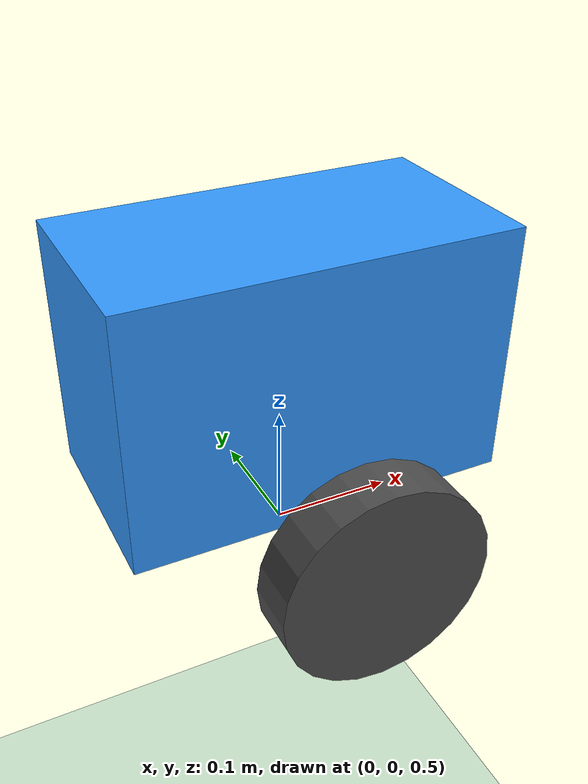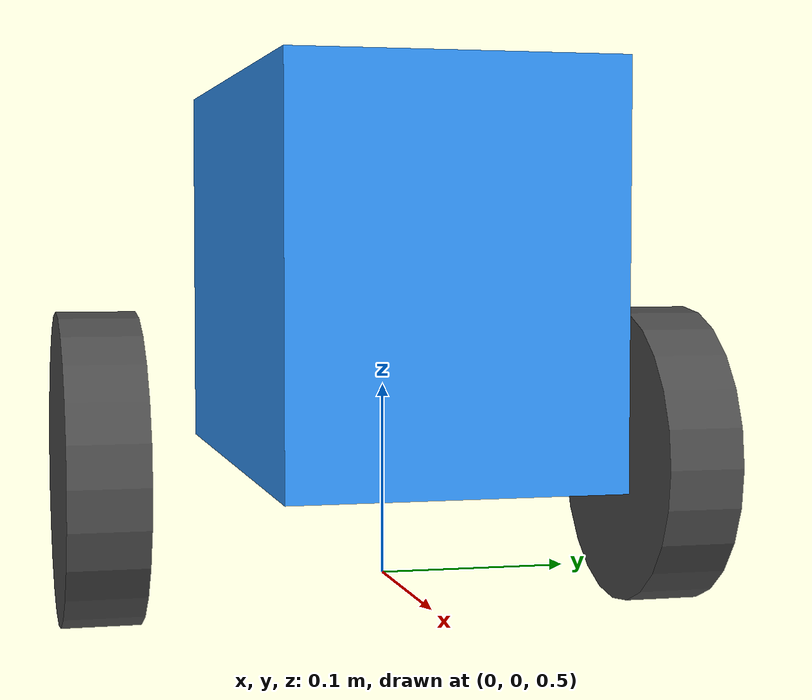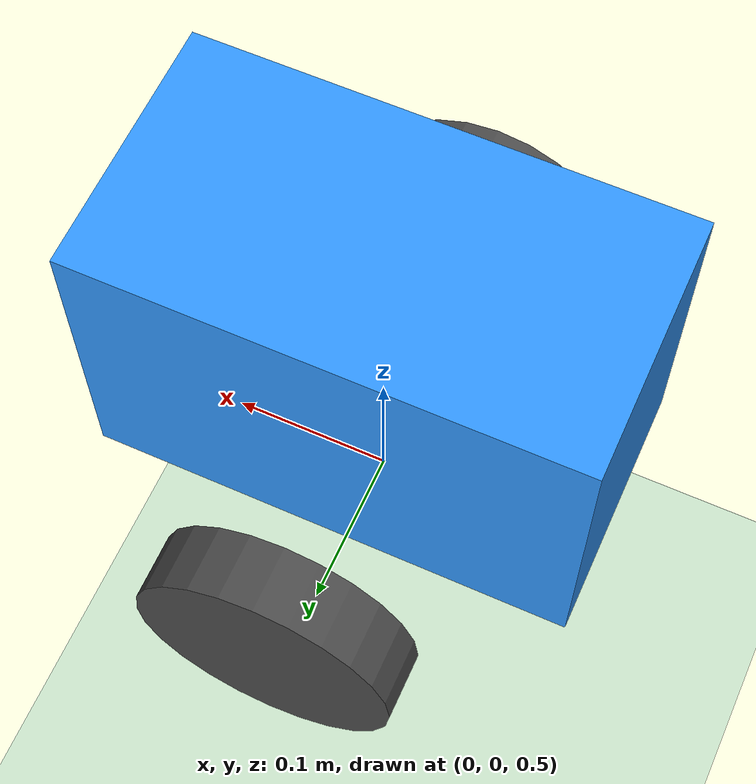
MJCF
<?xml version="1.0" encoding="utf-8"?>
<mujoco model="wheeled_robot">
  <!-- Настройки -->
  <option timestep="0.005"/>
  <option gravity="0 0 -9.81"/>
  <option integrator="RK4"/>

  <!-- Мир -->
  <worldbody>
    <!-- Пол -->
    <light name="top" pos="0 0 3" dir="0 0 -1" directional="true"/>
    <geom name="floor" type="plane" size="10 10 0.1" rgba="0.8 0.9 0.8 1" friction="1.0 0.005 0.0001"/>

    <!-- Основное тело робота -->
    <body name="base" pos="0 0 0.66">
      <!-- Свободное соединение - позволяет телу двигаться во всех направлениях -->
      <freejoint name="base_joint"/>

      <geom name="base_geom" type="box" size="0.15 0.08 0.1" mass="2.0" rgba="0.2 0.6 1 1"/>

      <!-- Левое колесо -->
      <body name="left_wheel" pos="0 0.15 -0.1">
        <joint name="left_wheel_hinge" type="hinge" axis="0 1 0" pos="0 0 0"/>
        <geom name="left_wheel_geom" type="cylinder" size="0.08 0.02"
              euler="90 0 0" mass="0.5" rgba="0.3 0.3 0.3 1"/>
      </body>

      <!-- Правое колесо -->
      <body name="right_wheel" pos="0 -0.15 -0.1">
        <joint name="right_wheel_hinge" type="hinge" axis="0 1 0" pos="0 0 0"/>
        <geom name="right_wheel_geom" type="cylinder" size="0.08 0.02"
              euler="90 0 0" mass="0.5" rgba="0.3 0.3 0.3 1"/>
      </body>
    </body>
  </worldbody>

  <!-- Приводы -->
  <actuator>
    <!-- Двигатели колес -->
    <motor name="left_wheel_motor" joint="left_wheel_hinge" gear="100"/>
    <motor name="right_wheel_motor" joint="right_wheel_hinge" gear="100"/>
  </actuator>
</mujoco>
